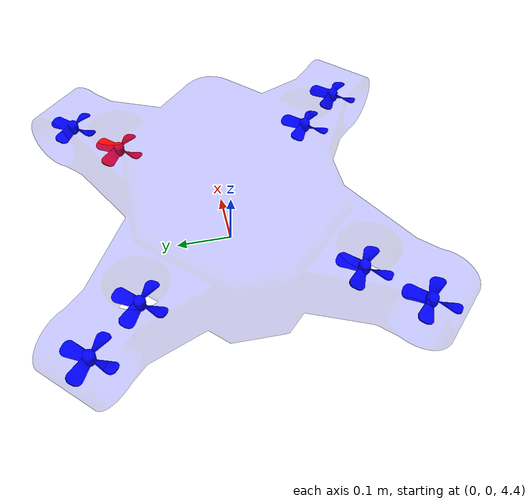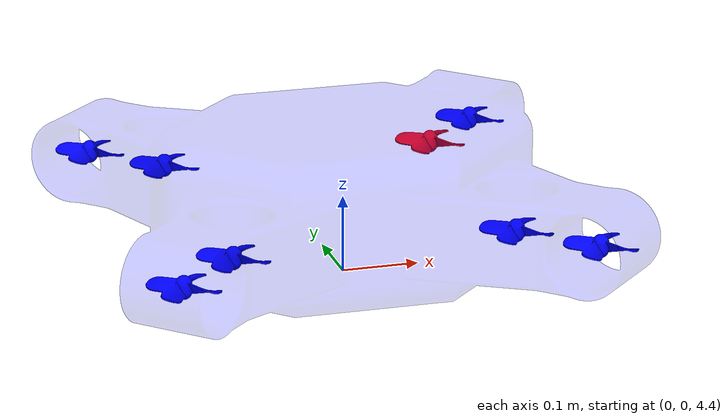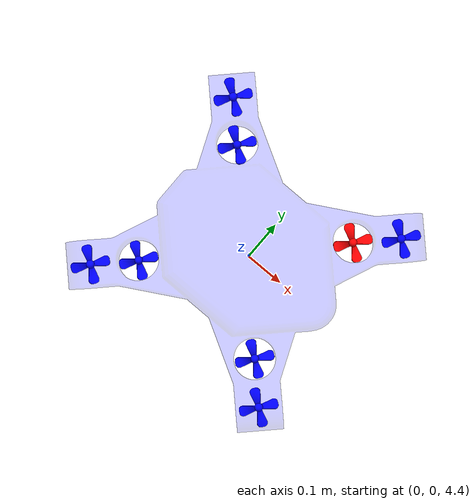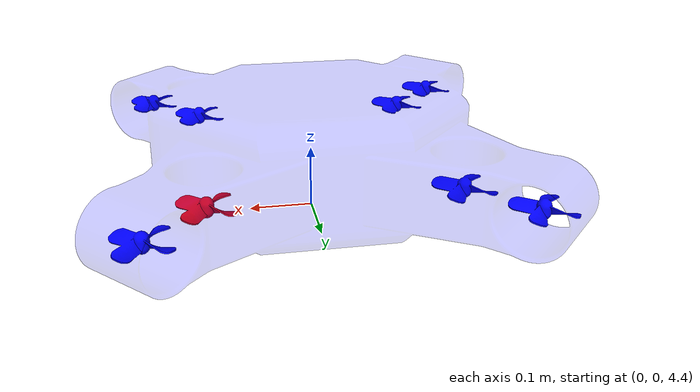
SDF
<?xml version="1.0"?>
<sdf version="1.7">
  <world name="default">

    <plugin filename="libignition-gazebo-physics-system.so"
      name="ignition::gazebo::systems::Physics"></plugin>
    <plugin filename="libignition-gazebo-user-commands-system.so"
      name="ignition::gazebo::systems::UserCommands"></plugin>
    <plugin filename="libignition-gazebo-scene-broadcaster-system.so"
      name="ignition::gazebo::systems::SceneBroadcaster"></plugin>
    <plugin
      filename="ignition-gazebo-buoyancy-system"
      name="ignition::gazebo::systems::Buoyancy">

      <graded_buoyancy>
        <default_density>1000</default_density>

        <density_change>
          <above_depth>5</above_depth>
          <density>1.2</density>
        </density_change>
      </graded_buoyancy>

    </plugin>

    <light type="directional" name="sun">
      <cast_shadows>true</cast_shadows>
      <pose>0 0 10 0 0 0</pose>
      <diffuse>0.8 0.8 0.8 1</diffuse>
      <specular>0.2 0.2 0.2 1</specular>
      <direction>-0.5 0.1 -0.9</direction>
    </light>

    <physics name="1ms" type="ignored">
      <max_step_size>0.01</max_step_size>
      <real_time_factor>1.0</real_time_factor>
    </physics>

    <model name="water_plane">
      <static>true</static>
      <pose>0 0 5 0 0 0</pose>
      <link name="link">
        <visual name="visual">
          <geometry>
            <plane>
              <normal>0 0 1</normal>
              <size>100 100</size>
            </plane>
          </geometry>
          <material>
            <ambient>0 0 1 0.5</ambient>
            <diffuse>0 0 1 0.5</diffuse>
            <specular>0.1 0.1 0.1 1</specular>
          </material>
        </visual>
      </link>
    </model>

    <model name="ground_plane">
      <static>true</static>
      <pose>0 0 0 0 0 0</pose>
      <link name="link">
        <visual name="visual">
          <geometry>
            <plane>
              <normal>0 0 1</normal>
              <size>100 100</size>
            </plane>
          </geometry>
          <material>
            <ambient>0 0 0 0.7</ambient>
            <diffuse>0 0 0 0.7</diffuse>
          </material>
        </visual>
        <collision name="collision">
          <geometry>
            <plane>
              <normal>0 0 1</normal>
              <size>100 100</size>
            </plane>
          </geometry>
          <surface>
            <friction>
              <ode>
                <mu>0</mu>
                <mu2>0</mu2>
              </ode>
            </friction>
          </surface>
        </collision>
      </link>
    </model>

    <include>
      <uri>./model/UnderWater_Robot.sdf</uri>
      <pose>0 0 4.5 0 0 0</pose>
    </include>
  </world>
</sdf>

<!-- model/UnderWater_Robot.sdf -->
<sdf version='1.9'>
  <model name='UnderWater_Robot'>

    <plugin
      filename="ignition-gazebo-odometry-publisher-system"
      name="ignition::gazebo::systems::OdometryPublisher">
      <odom_frame>world</odom_frame>
      <robot_base_frame>base_link</robot_base_frame>
      <update_frequency>50</update_frequency>
      <dimensions>3</dimensions>
    </plugin>

    <plugin
  filename="libignition-gazebo-pose-publisher-system.so"
  name="ignition::gazebo::systems::PosePublisher">

  <publish_model_pose>true</publish_model_pose>

  <publish_link_pose>true</publish_link_pose>

  <update_frequency>50</update_frequency>

  <use_pose_vector_msg>true</use_pose_vector_msg>
</plugin>

    <!-- 流体动力学插件：模拟水下机器人的水动力特性 -->
    <plugin
      filename="ignition-gazebo-hydrodynamics-system"
      name="ignition::gazebo::systems::Hydrodynamics">

      <!-- 应用流体动力学的链接名称 -->
      <link_name>base_link</link_name>

      <!-- 流体密度（kg/m³），淡水约1000，海水约1025 -->
      <fluid_density>1000</fluid_density>
      <xDotU>-2.0</xDotU>
      <yDotV>-2.0</yDotV>
      <zDotW>-10.0</zDotW>

      <xU>-10.0</xU>
      <yV>-15.0</yV>
      <zW>-25.0</zW>
      <kP>-3.0</kP>
      <mQ>-5.0</mQ>
      <nR>-5.0</nR>

      <!-- 绝对速度项 一般设置为0-->
      <xUabsU>0</xUabsU>
      <yVabsV>0</yVabsV>
      <zWabsW>0</zWabsW>

    </plugin>

    <link name='base_link'>
      <inertial>
        <pose>-0.0059136 -2.0566e-18 -0.099621 0 0 0</pose>
        <mass>80.677</mass>
        <inertia>
          <ixx>0.31402999999999998</ixx>
          <ixy>0</ixy>
          <ixz>0</ixz>
          <iyy>0.46765000000000001</iyy>
          <iyz>0</iyz>
          <izz>0.60275999999999996</izz>
        </inertia>
      </inertial>
      <collision name='base_link_collision'>
        <pose>0 0 0 0 0 0</pose>
        <geometry>
          <box>
            <size>0.6 0.6 0.2</size>
          </box>
        </geometry>
      </collision>
      <visual name='base_link_visual'>
        <pose>0 0 0 0 0 0</pose>
        <geometry>
          <mesh>
            <scale>1 1 1</scale>
            <uri>
              ./meshes/base_link.STL</uri>
          </mesh>
        </geometry>
        <material>
          <diffuse>0 0 1 0.21</diffuse>
          <ambient>0 0 1 0.21</ambient>
        </material>
      </visual>
    </link>
    <joint name='fan1' type='revolute'>
      <pose relative_to='base_link'>0.17108 0.18031 0 0 0 0</pose>
      <parent>base_link</parent>
      <child>joint1</child>
      <axis>
        <xyz>0 0 1</xyz>
        <limit>
          <lower>-1000000000</lower>
          <upper>1000000000</upper>
          <effort>50</effort>
          <velocity>200</velocity>
        </limit>
        <dynamics>
          <spring_reference>0</spring_reference>
          <spring_stiffness>0</spring_stiffness>
        </dynamics>
      </axis>
    </joint>
    <link name='joint1'>
      <pose relative_to='fan1'>0 0 0 0 0 0</pose>
      <inertial>
        <pose>8.3267e-16 -2.6923e-15 -4.1633e-17 0 0 0</pose>
        <mass>0.013259</mass>
        <inertia>
          <ixx>0.0001</ixx>
          <ixy>0</ixy>
          <ixz>0</ixz>
          <iyy>0.0001</iyy>
          <iyz>0</iyz>
          <izz>0.0001</izz>
        </inertia>
      </inertial>

      <visual name='joint1_visual'>
        <pose>0 0 0 0 0 0</pose>
        <geometry>
          <mesh>
            <scale>1 1 1</scale>
            <uri>
              ./meshes/joint.STL</uri>
          </mesh>
        </geometry>
        <material>
          <diffuse>1 0 0 1</diffuse>
          <ambient>1 0 0 1</ambient>
        </material>
      </visual>

    </link>
    <joint name='fan2' type='revolute'>
      <pose relative_to='base_link'>0.17108 -0.18031 0 0 0 0</pose>
      <parent>base_link</parent>
      <child>joint2</child>
      <axis>
        <xyz>0 0 1</xyz>
        <limit>
          <lower>-1000000000</lower>
          <upper>1000000000</upper>
          <effort>50</effort>
          <velocity>200</velocity>
        </limit>
        <dynamics>
          <spring_reference>0</spring_reference>
          <spring_stiffness>0</spring_stiffness>
        </dynamics>
      </axis>
    </joint>
    <link name='joint2'>
      <pose relative_to='fan2'>0 0 0 0 0 0</pose>
      <inertial>
        <pose>-1.9151e-15 -3.3029e-15 -1.9429e-16 0 0 0</pose>
        <mass>0.013259</mass>
        <inertia>
          <ixx>0.0001</ixx>
          <ixy>0</ixy>
          <ixz>0</ixz>
          <iyy>0.0001</iyy>
          <iyz>0</iyz>
          <izz>0.0001</izz>
        </inertia>
      </inertial>

      <visual name='joint2_visual'>
        <pose>0 0 0 0 0 0</pose>
        <geometry>
          <mesh>
            <scale>1 1 1</scale>
            <uri>
              ./meshes/joint.STL</uri>
          </mesh>
        </geometry>
        <material>
          <diffuse>0 0 1 1</diffuse>
          <ambient>0 0 1 1</ambient>
        </material>
      </visual>

    </link>
    <joint name='fan3' type='revolute'>
      <pose relative_to='base_link'>-0.18955 -0.18031 0 0 0 0</pose>
      <parent>base_link</parent>
      <child>joint3</child>
      <axis>
        <xyz>0 0 1</xyz>
        <limit>
          <lower>-1000000000</lower>
          <upper>1000000000</upper>
          <effort>50</effort>
          <velocity>200</velocity>
        </limit>
        <dynamics>
          <spring_reference>0</spring_reference>
          <spring_stiffness>0</spring_stiffness>
        </dynamics>
      </axis>
    </joint>
    <link name='joint3'>
      <pose relative_to='fan3'>0 0 0 0 0 0</pose>
      <inertial>
        <pose>2.7756e-16 -9.4369e-16 2.7756e-17 0 0 0</pose>
        <mass>0.013259</mass>
        <inertia>
          <ixx>0.0001</ixx>
          <ixy>0</ixy>
          <ixz>0</ixz>
          <iyy>0.0001</iyy>
          <iyz>0</iyz>
          <izz>0.0001</izz>
        </inertia>
      </inertial>

      <visual name='joint3_visual'>
        <pose>0 0 0 0 0 0</pose>
        <geometry>
          <mesh>
            <scale>1 1 1</scale>
            <uri>
              ./meshes/joint.STL</uri>
          </mesh>
        </geometry>
        <material>
          <diffuse>0 0 1 1</diffuse>
          <ambient>0 0 1 1</ambient>
        </material>
      </visual>
    </link>
    <joint name='fan4' type='revolute'>
      <pose relative_to='base_link'>-0.18955 0.18031 0 0 0 0</pose>
      <parent>base_link</parent>
      <child>joint4</child>
      <axis>
        <xyz>0 0 1</xyz>
        <limit>
          <lower>-1000000000</lower>
          <upper>1000000000</upper>
          <effort>50</effort>
          <velocity>200</velocity>
        </limit>
        <dynamics>
          <spring_reference>0</spring_reference>
          <spring_stiffness>0</spring_stiffness>
        </dynamics>
      </axis>
    </joint>
    <link name='joint4'>
      <pose relative_to='fan4'>0 0 0 0 0 0</pose>
      <inertial>
        <pose>-2.4702e-15 1.9429e-16 2.7756e-17 0 0 0</pose>
        <mass>0.013259</mass>
        <inertia>
          <ixx>0.0001</ixx>
          <ixy>0</ixy>
          <ixz>0</ixz>
          <iyy>0.0001</iyy>
          <iyz>0</iyz>
          <izz>0.0001</izz>
        </inertia>
      </inertial>

      <visual name='joint4_visual'>
        <pose>0 0 0 0 0 0</pose>
        <geometry>
          <mesh>
            <scale>1 1 1</scale>
            <uri>
              ./meshes/joint.STL</uri>
          </mesh>
        </geometry>
        <material>
          <diffuse>0 0 1 1</diffuse>
          <ambient>0 0 1 1</ambient>
        </material>
      </visual>
    </link>
    <joint name='fan5' type='revolute'>
      <pose relative_to='base_link'>0.25239 -0.26163 0 0 0 0</pose>
      <parent>base_link</parent>
      <child>joint5</child>
      <axis>
        <xyz>-0.70711 -0.70711 0</xyz>
        <limit>
          <lower>-1000000000</lower>
          <upper>1000000000</upper>
          <effort>50</effort>
          <velocity>200</velocity>
        </limit>
        <dynamics>
          <spring_reference>0</spring_reference>
          <spring_stiffness>0</spring_stiffness>
        </dynamics>
      </axis>
    </joint>
    <link name='joint5'>
      <pose relative_to='fan5'>0 0 0 0 0 0</pose>
      <inertial>
        <pose>1.1627e-08 1.1627e-08 -1.9706e-15 0 0 0</pose>
        <mass>0.013259</mass>
        <inertia>
          <ixx>0.0001</ixx>
          <ixy>0</ixy>
          <ixz>0</ixz>
          <iyy>0.0001</iyy>
          <iyz>0</iyz>
          <izz>0.0001</izz>
        </inertia>
      </inertial>

      <visual name='joint5_visual'>
        <pose>0 0 0 0 0 0</pose>
        <geometry>
          <mesh>
            <scale>1 1 1</scale>
            <uri>
              ./meshes/joint.STL</uri>
          </mesh>
        </geometry>
        <material>
          <diffuse>0 0 1 1</diffuse>
          <ambient>0 0 1 1</ambient>
        </material>
      </visual>
    </link>
    <joint name='fan6' type='revolute'>
      <pose relative_to='base_link'>0.25239 0.26163 0 0 0 0</pose>
      <parent>base_link</parent>
      <child>joint6</child>
      <axis>
        <xyz>-0.70711 0.70711 0</xyz>
        <limit>
          <lower>-1000000000</lower>
          <upper>1000000000</upper>
          <effort>50</effort>
          <velocity>200</velocity>
        </limit>
        <dynamics>
          <spring_reference>0</spring_reference>
          <spring_stiffness>0</spring_stiffness>
        </dynamics>
      </axis>
    </joint>
    <link name='joint6'>
      <pose relative_to='fan6'>0 0 0 0 0 0</pose>
      <inertial>
        <pose>-2.2587e-08 2.2587e-08 -6.245e-16 0 0 0</pose>
        <mass>0.013259</mass>
        <inertia>
          <ixx>0.0001</ixx>
          <ixy>0</ixy>
          <ixz>0</ixz>
          <iyy>0.0001</iyy>
          <iyz>0</iyz>
          <izz>0.0001</izz>
        </inertia>
      </inertial>

      <visual name='joint6_visual'>
        <pose>0 0 0 0 0 0</pose>
        <geometry>
          <mesh>
            <scale>1 1 1</scale>
            <uri>
              ./meshes/joint.STL</uri>
          </mesh>
        </geometry>
        <material>
          <diffuse>0 0 1 1</diffuse>
          <ambient>0 0 1 1</ambient>
        </material>
      </visual>
    </link>
    <joint name='fan7' type='revolute'>
      <pose relative_to='base_link'>-0.27087 -0.26163 0 0 0 0</pose>
      <parent>base_link</parent>
      <child>joint7</child>
      <axis>
        <xyz>0.70711 -0.70711 0</xyz>
        <limit>
          <lower>-1000000000</lower>
          <upper>1000000000</upper>
          <effort>50</effort>
          <velocity>200</velocity>
        </limit>
        <dynamics>
          <spring_reference>0</spring_reference>
          <spring_stiffness>0</spring_stiffness>
        </dynamics>
      </axis>
    </joint>
    <link name='joint7'>
      <pose relative_to='fan7'>0 0 0 0 0 0</pose>
      <inertial>
        <pose>2.2587e-08 -2.2587e-08 1.471e-15 0 0 0</pose>
        <mass>0.013259</mass>
        <inertia>
          <ixx>0.0001</ixx>
          <ixy>0</ixy>
          <ixz>0</ixz>
          <iyy>0.0001</iyy>
          <iyz>0</iyz>
          <izz>0.0001</izz>
        </inertia>
      </inertial>

      <visual name='joint7_visual'>
        <pose>0 0 0 0 0 0</pose>
        <geometry>
          <mesh>
            <scale>1 1 1</scale>
            <uri>
              ./meshes/joint.STL</uri>
          </mesh>
        </geometry>
        <material>
          <diffuse>0 0 1 1</diffuse>
          <ambient>0 0 1 1</ambient>
        </material>
      </visual>
    </link>
    <joint name='fan8' type='revolute'>
      <pose relative_to='base_link'>-0.27087 0.26163 0 0 0 0</pose>
      <parent>base_link</parent>
      <child>joint8</child>
      <axis>
        <xyz>0.70711 0.70711 0</xyz>
        <limit>
          <lower>-1000000000</lower>
          <upper>1000000000</upper>
          <effort>50</effort>
          <velocity>200</velocity>
        </limit>
        <dynamics>
          <spring_reference>0</spring_reference>
          <spring_stiffness>0</spring_stiffness>
        </dynamics>
      </axis>
    </joint>
    <link name='joint8'>
      <pose relative_to='fan8'>0 0 0 0 0 0</pose>
      <inertial>
        <pose>3.6059e-08 3.6059e-08 9.2981e-16 0 0 0</pose>
        <mass>0.013259</mass>
        <inertia>
          <ixx>0.0001</ixx>
          <ixy>0</ixy>
          <ixz>0</ixz>
          <iyy>0.0001</iyy>
          <iyz>0</iyz>
          <izz>0.0001</izz>
        </inertia>
      </inertial>

      <visual name='joint8_visual'>
        <pose>0 0 0 0 0 0</pose>
        <geometry>
          <mesh>
            <scale>1 1 1</scale>
            <uri>
              ./meshes/joint.STL</uri>
          </mesh>
        </geometry>
        <material>
          <diffuse>0 0 1 1</diffuse>
          <ambient>0 0 1 1</ambient>
        </material>
      </visual>
    </link>

    <plugin filename="ignition-gazebo-thruster-system" name="ignition::gazebo::systems::Thruster">
      <namespace>UnderWater_Robot</namespace>
      <joint_name>fan1</joint_name>
      <thrust_coefficient>0.002</thrust_coefficient>
      <fluid_density>1000</fluid_density>
      <propeller_diameter>0.1</propeller_diameter>
      <velocity_control>true</velocity_control>
    </plugin>

    <plugin filename="ignition-gazebo-thruster-system" name="ignition::gazebo::systems::Thruster">
      <namespace>UnderWater_Robot</namespace>
      <joint_name>fan2</joint_name>
      <thrust_coefficient>0.002</thrust_coefficient>
      <fluid_density>1000</fluid_density>
      <propeller_diameter>0.1</propeller_diameter>
      <velocity_control>true</velocity_control>
    </plugin>

    <plugin filename="ignition-gazebo-thruster-system" name="ignition::gazebo::systems::Thruster">
      <namespace>UnderWater_Robot</namespace>
      <joint_name>fan3</joint_name>
      <thrust_coefficient>0.002</thrust_coefficient>
      <fluid_density>1000</fluid_density>
      <propeller_diameter>0.1</propeller_diameter>
      <velocity_control>true</velocity_control>
    </plugin>

    <plugin filename="ignition-gazebo-thruster-system" name="ignition::gazebo::systems::Thruster">
      <namespace>UnderWater_Robot</namespace>
      <joint_name>fan4</joint_name>
      <thrust_coefficient>0.002</thrust_coefficient>
      <fluid_density>1000</fluid_density>
      <propeller_diameter>0.1</propeller_diameter>
      <velocity_control>true</velocity_control>
    </plugin>

<plugin filename="ignition-gazebo-thruster-system" name="ignition::gazebo::systems::Thruster">
      <namespace>UnderWater_Robot</namespace>
      <joint_name>fan5</joint_name>
      <thrust_coefficient>0.002</thrust_coefficient>
      <fluid_density>1000</fluid_density>
      <propeller_diameter>0.1</propeller_diameter>
      <velocity_control>true</velocity_control>
    </plugin>
    <plugin filename="ignition-gazebo-thruster-system" name="ignition::gazebo::systems::Thruster">
      <namespace>UnderWater_Robot</namespace>
      <joint_name>fan6</joint_name>
      <thrust_coefficient>0.002</thrust_coefficient>
      <fluid_density>1000</fluid_density>
      <propeller_diameter>0.1</propeller_diameter>
      <velocity_control>true</velocity_control>
    </plugin>
    <plugin filename="ignition-gazebo-thruster-system" name="ignition::gazebo::systems::Thruster">
      <namespace>UnderWater_Robot</namespace>
      <joint_name>fan7</joint_name>
      <thrust_coefficient>0.002</thrust_coefficient>
      <fluid_density>1000</fluid_density>
      <propeller_diameter>0.1</propeller_diameter>
      <velocity_control>true</velocity_control>
    </plugin>
    <plugin filename="ignition-gazebo-thruster-system" name="ignition::gazebo::systems::Thruster">
      <namespace>UnderWater_Robot</namespace>
      <joint_name>fan8</joint_name>
      <thrust_coefficient>0.002</thrust_coefficient>
      <fluid_density>1000</fluid_density>
      <propeller_diameter>0.1</propeller_diameter>
      <velocity_control>true</velocity_control>
    </plugin>

    <plugin
      filename="ignition-gazebo-joint-state-publisher-system"
      name="ignition::gazebo::systems::JointStatePublisher">
    </plugin>

  </model>
</sdf>
